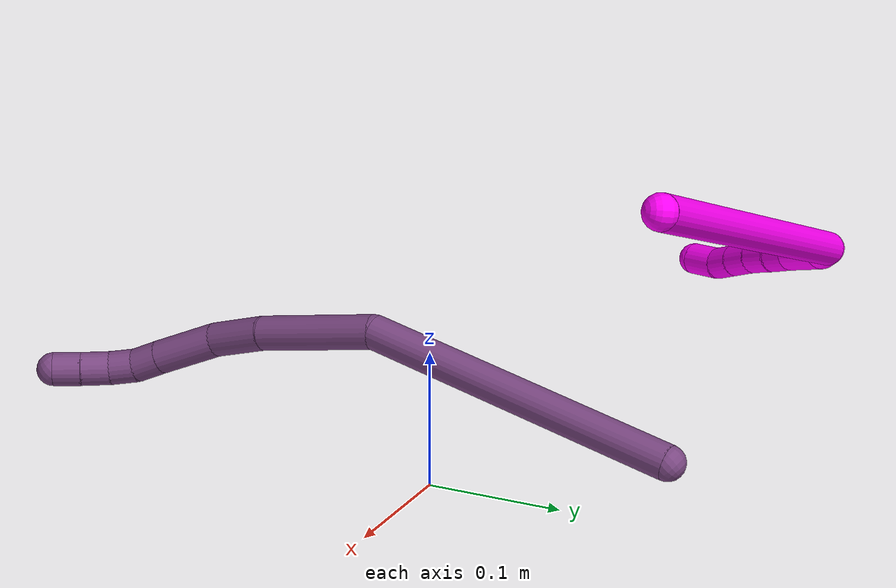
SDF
<sdf version="1.7">
 <world name="default">
  <model name="10">
   <static>0</static>
   <link name="10">
    <collision name="collision-cylinder-e_1_1_4">
     <pose>-0.078935 -0.059363 -0.112699 2.65679 -0.554774 -1.7114</pose>
     <geometry><cylinder><radius>0.0125</radius><length>0.299705</length></cylinder></geometry>
     <surface>
      <friction><ode><mu>1.16</mu><mu2>1.16</mu2><slip1>0</slip1><slip2>0</slip2></ode></friction>
      <contact><ode><kp>1e+06</kp><kd>1</kd><max_vel>0</max_vel><min_depth>0.001</min_depth></ode></contact>
     </surface>
    </collision>
    <visual name="visual-cylinder-e_1_1_4">
     <pose>-0.078935 -0.059363 -0.112699 2.65679 -0.554774 -1.7114</pose>
     <geometry><cylinder><radius>0.0125</radius><length>0.299705</length></cylinder></geometry>
     <material><ambient>1 0 0.964706 1</ambient></material>
    </visual>
    <collision name="collision-cylinder-e_2_4_5">
     <pose>-0.170356 -0.12872 -0.231835 2.14297 -0.809927 -1.33222</pose>
     <geometry><cylinder><radius>0.0125</radius><length>0.034479</length></cylinder></geometry>
     <surface>
      <friction><ode><mu>1.16</mu><mu2>1.16</mu2><slip1>0</slip1><slip2>0</slip2></ode></friction>
      <contact><ode><kp>1e+06</kp><kd>1</kd><max_vel>0</max_vel><min_depth>0.001</min_depth></ode></contact>
     </surface>
    </collision>
    <visual name="visual-cylinder-e_2_4_5">
     <pose>-0.170356 -0.12872 -0.231835 2.14297 -0.809927 -1.33222</pose>
     <geometry><cylinder><radius>0.0125</radius><length>0.034479</length></cylinder></geometry>
     <material><ambient>1 0 0.964706 1</ambient></material>
    </visual>
    <collision name="collision-cylinder-e_3_5_6">
     <pose>-0.204382 -0.15416 -0.239032 1.61996 -0.948128 -0.988649</pose>
     <geometry><cylinder><radius>0.0125</radius><length>0.053036</length></cylinder></geometry>
     <surface>
      <friction><ode><mu>1.16</mu><mu2>1.16</mu2><slip1>0</slip1><slip2>0</slip2></ode></friction>
      <contact><ode><kp>1e+06</kp><kd>1</kd><max_vel>0</max_vel><min_depth>0.001</min_depth></ode></contact>
     </surface>
    </collision>
    <visual name="visual-cylinder-e_3_5_6">
     <pose>-0.204382 -0.15416 -0.239032 1.61996 -0.948128 -0.988649</pose>
     <geometry><cylinder><radius>0.0125</radius><length>0.053036</length></cylinder></geometry>
     <material><ambient>1 0 0.964706 1</ambient></material>
    </visual>
    <collision name="collision-cylinder-e_4_6_7">
     <pose>-0.233385 -0.175735 -0.236758 1.11114 -0.829003 -0.533285</pose>
     <geometry><cylinder><radius>0.0125</radius><length>0.020244</length></cylinder></geometry>
     <surface>
      <friction><ode><mu>1.16</mu><mu2>1.16</mu2><slip1>0</slip1><slip2>0</slip2></ode></friction>
      <contact><ode><kp>1e+06</kp><kd>1</kd><max_vel>0</max_vel><min_depth>0.001</min_depth></ode></contact>
     </surface>
    </collision>
    <visual name="visual-cylinder-e_4_6_7">
     <pose>-0.233385 -0.175735 -0.236758 1.11114 -0.829003 -0.533285</pose>
     <geometry><cylinder><radius>0.0125</radius><length>0.020244</length></cylinder></geometry>
     <material><ambient>1 0 0.964706 1</ambient></material>
    </visual>
    <collision name="collision-cylinder-e_5_7_8">
     <pose>-0.250007 -0.188838 -0.231109 1.21199 -0.888078 -0.636889</pose>
     <geometry><cylinder><radius>0.0125</radius><length>0.02361</length></cylinder></geometry>
     <surface>
      <friction><ode><mu>1.16</mu><mu2>1.16</mu2><slip1>0</slip1><slip2>0</slip2></ode></friction>
      <contact><ode><kp>1e+06</kp><kd>1</kd><max_vel>0</max_vel><min_depth>0.001</min_depth></ode></contact>
     </surface>
    </collision>
    <visual name="visual-cylinder-e_5_7_8">
     <pose>-0.250007 -0.188838 -0.231109 1.21199 -0.888078 -0.636889</pose>
     <geometry><cylinder><radius>0.0125</radius><length>0.02361</length></cylinder></geometry>
     <material><ambient>1 0 0.964706 1</ambient></material>
    </visual>
    <collision name="collision-cylinder-e_6_8_9">
     <pose>-0.267171 -0.203031 -0.225632 1.19341 -0.800526 -0.559749</pose>
     <geometry><cylinder><radius>0.0125</radius><length>0.022307</length></cylinder></geometry>
     <surface>
      <friction><ode><mu>1.16</mu><mu2>1.16</mu2><slip1>0</slip1><slip2>0</slip2></ode></friction>
      <contact><ode><kp>1e+06</kp><kd>1</kd><max_vel>0</max_vel><min_depth>0.001</min_depth></ode></contact>
     </surface>
    </collision>
    <visual name="visual-cylinder-e_6_8_9">
     <pose>-0.267171 -0.203031 -0.225632 1.19341 -0.800526 -0.559749</pose>
     <geometry><cylinder><radius>0.0125</radius><length>0.022307</length></cylinder></geometry>
     <material><ambient>1 0 0.964706 1</ambient></material>
    </visual>
    <collision name="collision-cylinder-e_7_9_10">
     <pose>-0.28242 -0.216831 -0.220156 1.19267 -0.796845 -0.556606</pose>
     <geometry><cylinder><radius>0.0125</radius><length>0.020258</length></cylinder></geometry>
     <surface>
      <friction><ode><mu>1.16</mu><mu2>1.16</mu2><slip1>0</slip1><slip2>0</slip2></ode></friction>
      <contact><ode><kp>1e+06</kp><kd>1</kd><max_vel>0</max_vel><min_depth>0.001</min_depth></ode></contact>
     </surface>
    </collision>
    <visual name="visual-cylinder-e_7_9_10">
     <pose>-0.28242 -0.216831 -0.220156 1.19267 -0.796845 -0.556606</pose>
     <geometry><cylinder><radius>0.0125</radius><length>0.020258</length></cylinder></geometry>
     <material><ambient>1 0 0.964706 1</ambient></material>
    </visual>
    <collision name="collision-cylinder-e_8_10_2">
     <pose>-0.30066 -0.228794 -0.21266 0.834146 -0.986804 -0.467809</pose>
     <geometry><cylinder><radius>0.0125</radius><length>0.026361</length></cylinder></geometry>
     <surface>
      <friction><ode><mu>1.16</mu><mu2>1.16</mu2><slip1>0</slip1><slip2>0</slip2></ode></friction>
      <contact><ode><kp>1e+06</kp><kd>1</kd><max_vel>0</max_vel><min_depth>0.001</min_depth></ode></contact>
     </surface>
    </collision>
    <visual name="visual-cylinder-e_8_10_2">
     <pose>-0.30066 -0.228794 -0.21266 0.834146 -0.986804 -0.467809</pose>
     <geometry><cylinder><radius>0.0125</radius><length>0.026361</length></cylinder></geometry>
     <material><ambient>1 0 0.964706 1</ambient></material>
    </visual>
    <collision name="collision-sphere-2">
     <pose>-0.311656 -0.234177 -0.207778 0 -0 0</pose>
     <geometry><sphere><radius>0.0125</radius></sphere></geometry>
     <surface>
      <friction><ode><mu>1.16</mu><mu2>1.16</mu2><slip1>0</slip1><slip2>0</slip2></ode></friction>
      <contact><ode><kp>1e+06</kp><kd>1</kd><max_vel>0</max_vel><min_depth>0.001</min_depth></ode></contact>
     </surface>
    </collision>
    <visual name="visual-sphere-2">
     <pose>-0.311656 -0.234177 -0.207778 0 -0 0</pose>
     <geometry><sphere><radius>0.0125</radius></sphere></geometry>
     <material><ambient>1 0 0.964706 1</ambient></material>
    </visual>
    <collision name="collision-sphere-10">
     <pose>-0.289664 -0.223411 -0.217542 0 -0 0</pose>
     <geometry><sphere><radius>0.0125</radius></sphere></geometry>
     <surface>
      <friction><ode><mu>1.16</mu><mu2>1.16</mu2><slip1>0</slip1><slip2>0</slip2></ode></friction>
      <contact><ode><kp>1e+06</kp><kd>1</kd><max_vel>0</max_vel><min_depth>0.001</min_depth></ode></contact>
     </surface>
    </collision>
    <visual name="visual-sphere-10">
     <pose>-0.289664 -0.223411 -0.217542 0 -0 0</pose>
     <geometry><sphere><radius>0.0125</radius></sphere></geometry>
     <material><ambient>1 0 0.964706 1</ambient></material>
    </visual>
    <collision name="collision-sphere-9">
     <pose>-0.275176 -0.210251 -0.22277 0 -0 0</pose>
     <geometry><sphere><radius>0.0125</radius></sphere></geometry>
     <surface>
      <friction><ode><mu>1.16</mu><mu2>1.16</mu2><slip1>0</slip1><slip2>0</slip2></ode></friction>
      <contact><ode><kp>1e+06</kp><kd>1</kd><max_vel>0</max_vel><min_depth>0.001</min_depth></ode></contact>
     </surface>
    </collision>
    <visual name="visual-sphere-9">
     <pose>-0.275176 -0.210251 -0.22277 0 -0 0</pose>
     <geometry><sphere><radius>0.0125</radius></sphere></geometry>
     <material><ambient>1 0 0.964706 1</ambient></material>
    </visual>
    <collision name="collision-sphere-4">
     <pose>-0.15787 -0.118726 -0.225399 0 -0 0</pose>
     <geometry><sphere><radius>0.0125</radius></sphere></geometry>
     <surface>
      <friction><ode><mu>1.16</mu><mu2>1.16</mu2><slip1>0</slip1><slip2>0</slip2></ode></friction>
      <contact><ode><kp>1e+06</kp><kd>1</kd><max_vel>0</max_vel><min_depth>0.001</min_depth></ode></contact>
     </surface>
    </collision>
    <visual name="visual-sphere-4">
     <pose>-0.15787 -0.118726 -0.225399 0 -0 0</pose>
     <geometry><sphere><radius>0.0125</radius></sphere></geometry>
     <material><ambient>1 0 0.964706 1</ambient></material>
    </visual>
    <collision name="collision-sphere-1">
     <geometry><sphere><radius>0.0125</radius></sphere></geometry>
     <surface>
      <friction><ode><mu>1.16</mu><mu2>1.16</mu2><slip1>0</slip1><slip2>0</slip2></ode></friction>
      <contact><ode><kp>1e+06</kp><kd>1</kd><max_vel>0</max_vel><min_depth>0.001</min_depth></ode></contact>
     </surface>
    </collision>
    <visual name="visual-sphere-1">
     <geometry><sphere><radius>0.0125</radius></sphere></geometry>
     <material><ambient>1 0 0.964706 1</ambient></material>
    </visual>
    <collision name="collision-sphere-8">
     <pose>-0.259166 -0.195811 -0.228494 0 -0 0</pose>
     <geometry><sphere><radius>0.0125</radius></sphere></geometry>
     <surface>
      <friction><ode><mu>1.16</mu><mu2>1.16</mu2><slip1>0</slip1><slip2>0</slip2></ode></friction>
      <contact><ode><kp>1e+06</kp><kd>1</kd><max_vel>0</max_vel><min_depth>0.001</min_depth></ode></contact>
     </surface>
    </collision>
    <visual name="visual-sphere-8">
     <pose>-0.259166 -0.195811 -0.228494 0 -0 0</pose>
     <geometry><sphere><radius>0.0125</radius></sphere></geometry>
     <material><ambient>1 0 0.964706 1</ambient></material>
    </visual>
    <collision name="collision-sphere-5">
     <pose>-0.182841 -0.138714 -0.238272 0 -0 0</pose>
     <geometry><sphere><radius>0.0125</radius></sphere></geometry>
     <surface>
      <friction><ode><mu>1.16</mu><mu2>1.16</mu2><slip1>0</slip1><slip2>0</slip2></ode></friction>
      <contact><ode><kp>1e+06</kp><kd>1</kd><max_vel>0</max_vel><min_depth>0.001</min_depth></ode></contact>
     </surface>
    </collision>
    <visual name="visual-sphere-5">
     <pose>-0.182841 -0.138714 -0.238272 0 -0 0</pose>
     <geometry><sphere><radius>0.0125</radius></sphere></geometry>
     <material><ambient>1 0 0.964706 1</ambient></material>
    </visual>
    <collision name="collision-sphere-6">
     <pose>-0.225923 -0.169607 -0.239792 0 -0 0</pose>
     <geometry><sphere><radius>0.0125</radius></sphere></geometry>
     <surface>
      <friction><ode><mu>1.16</mu><mu2>1.16</mu2><slip1>0</slip1><slip2>0</slip2></ode></friction>
      <contact><ode><kp>1e+06</kp><kd>1</kd><max_vel>0</max_vel><min_depth>0.001</min_depth></ode></contact>
     </surface>
    </collision>
    <visual name="visual-sphere-6">
     <pose>-0.225923 -0.169607 -0.239792 0 -0 0</pose>
     <geometry><sphere><radius>0.0125</radius></sphere></geometry>
     <material><ambient>1 0 0.964706 1</ambient></material>
    </visual>
    <collision name="collision-sphere-7">
     <pose>-0.240848 -0.181864 -0.233724 0 -0 0</pose>
     <geometry><sphere><radius>0.0125</radius></sphere></geometry>
     <surface>
      <friction><ode><mu>1.16</mu><mu2>1.16</mu2><slip1>0</slip1><slip2>0</slip2></ode></friction>
      <contact><ode><kp>1e+06</kp><kd>1</kd><max_vel>0</max_vel><min_depth>0.001</min_depth></ode></contact>
     </surface>
    </collision>
    <visual name="visual-sphere-7">
     <pose>-0.240848 -0.181864 -0.233724 0 -0 0</pose>
     <geometry><sphere><radius>0.0125</radius></sphere></geometry>
     <material><ambient>1 0 0.964706 1</ambient></material>
    </visual>
    <inertial>
     <pose>-0.141209 -0.106749 -0.159591 0 -0 0</pose>
     <mass>0.5</mass>
     <inertia>
      <ixx>-0.002194</ixx>
      <ixy>0</ixy>
      <ixz>0</ixz>
      <iyy>-0.001083</iyy>
      <iyz>0</iyz>
      <izz>0.002104</izz>
     </inertia>
    </inertial>
   </link>
   <pose>0.046559 0.184387 0.237258 1.41505 0.307978 0.702313</pose>
  </model>
  <model name="20">
   <static>0</static>
   <link name="20">
    <collision name="collision-cylinder-e_1_1_4">
     <pose>0.031684 -0.056797 0.097159 0.529005 0.274425 0.074763</pose>
     <geometry><cylinder><radius>0.0125</radius><length>0.233834</length></cylinder></geometry>
     <surface>
      <friction><ode><mu>1.16</mu><mu2>1.16</mu2><slip1>0</slip1><slip2>0</slip2></ode></friction>
      <contact><ode><kp>1e+06</kp><kd>1</kd><max_vel>0</max_vel><min_depth>0.001</min_depth></ode></contact>
     </surface>
    </collision>
    <visual name="visual-cylinder-e_1_1_4">
     <pose>0.031684 -0.056797 0.097159 0.529005 0.274425 0.074763</pose>
     <geometry><cylinder><radius>0.0125</radius><length>0.233834</length></cylinder></geometry>
     <material><ambient>0.478431 0.278431 0.509804 1</ambient></material>
    </visual>
    <collision name="collision-cylinder-e_2_4_5">
     <pose>0.087964 -0.141347 0.221114 0.802922 0.56758 0.246377</pose>
     <geometry><cylinder><radius>0.0125</radius><length>0.091504</length></cylinder></geometry>
     <surface>
      <friction><ode><mu>1.16</mu><mu2>1.16</mu2><slip1>0</slip1><slip2>0</slip2></ode></friction>
      <contact><ode><kp>1e+06</kp><kd>1</kd><max_vel>0</max_vel><min_depth>0.001</min_depth></ode></contact>
     </surface>
    </collision>
    <visual name="visual-cylinder-e_2_4_5">
     <pose>0.087964 -0.141347 0.221114 0.802922 0.56758 0.246377</pose>
     <geometry><cylinder><radius>0.0125</radius><length>0.091504</length></cylinder></geometry>
     <material><ambient>0.478431 0.278431 0.509804 1</ambient></material>
    </visual>
    <collision name="collision-cylinder-e_3_5_6">
     <pose>0.124484 -0.183983 0.258339 0.959639 0.580724 0.308517</pose>
     <geometry><cylinder><radius>0.0125</radius><length>0.043471</length></cylinder></geometry>
     <surface>
      <friction><ode><mu>1.16</mu><mu2>1.16</mu2><slip1>0</slip1><slip2>0</slip2></ode></friction>
      <contact><ode><kp>1e+06</kp><kd>1</kd><max_vel>0</max_vel><min_depth>0.001</min_depth></ode></contact>
     </surface>
    </collision>
    <visual name="visual-cylinder-e_3_5_6">
     <pose>0.124484 -0.183983 0.258339 0.959639 0.580724 0.308517</pose>
     <geometry><cylinder><radius>0.0125</radius><length>0.043471</length></cylinder></geometry>
     <material><ambient>0.478431 0.278431 0.509804 1</ambient></material>
    </visual>
    <collision name="collision-cylinder-e_4_6_7">
     <pose>0.15408 -0.211837 0.278238 0.940073 0.833079 0.44217</pose>
     <geometry><cylinder><radius>0.0125</radius><length>0.047758</length></cylinder></geometry>
     <surface>
      <friction><ode><mu>1.16</mu><mu2>1.16</mu2><slip1>0</slip1><slip2>0</slip2></ode></friction>
      <contact><ode><kp>1e+06</kp><kd>1</kd><max_vel>0</max_vel><min_depth>0.001</min_depth></ode></contact>
     </surface>
    </collision>
    <visual name="visual-cylinder-e_4_6_7">
     <pose>0.15408 -0.211837 0.278238 0.940073 0.833079 0.44217</pose>
     <geometry><cylinder><radius>0.0125</radius><length>0.047758</length></cylinder></geometry>
     <material><ambient>0.478431 0.278431 0.509804 1</ambient></material>
    </visual>
    <collision name="collision-cylinder-e_5_7_8">
     <pose>0.179721 -0.230521 0.291639 0.968354 0.854861 0.470276</pose>
     <geometry><cylinder><radius>0.0125</radius><length>0.021128</length></cylinder></geometry>
     <surface>
      <friction><ode><mu>1.16</mu><mu2>1.16</mu2><slip1>0</slip1><slip2>0</slip2></ode></friction>
      <contact><ode><kp>1e+06</kp><kd>1</kd><max_vel>0</max_vel><min_depth>0.001</min_depth></ode></contact>
     </surface>
    </collision>
    <visual name="visual-cylinder-e_5_7_8">
     <pose>0.179721 -0.230521 0.291639 0.968354 0.854861 0.470276</pose>
     <geometry><cylinder><radius>0.0125</radius><length>0.021128</length></cylinder></geometry>
     <material><ambient>0.478431 0.278431 0.509804 1</ambient></material>
    </visual>
    <collision name="collision-cylinder-e_6_8_9">
     <pose>0.195129 -0.239652 0.301337 0.534862 0.837143 0.242582</pose>
     <geometry><cylinder><radius>0.0125</radius><length>0.020031</length></cylinder></geometry>
     <surface>
      <friction><ode><mu>1.16</mu><mu2>1.16</mu2><slip1>0</slip1><slip2>0</slip2></ode></friction>
      <contact><ode><kp>1e+06</kp><kd>1</kd><max_vel>0</max_vel><min_depth>0.001</min_depth></ode></contact>
     </surface>
    </collision>
    <visual name="visual-cylinder-e_6_8_9">
     <pose>0.195129 -0.239652 0.301337 0.534862 0.837143 0.242582</pose>
     <geometry><cylinder><radius>0.0125</radius><length>0.020031</length></cylinder></geometry>
     <material><ambient>0.478431 0.278431 0.509804 1</ambient></material>
    </visual>
    <collision name="collision-cylinder-e_7_9_10">
     <pose>0.210962 -0.244002 0.314082 0.132885 0.873047 0.062068</pose>
     <geometry><cylinder><radius>0.0125</radius><length>0.021908</length></cylinder></geometry>
     <surface>
      <friction><ode><mu>1.16</mu><mu2>1.16</mu2><slip1>0</slip1><slip2>0</slip2></ode></friction>
      <contact><ode><kp>1e+06</kp><kd>1</kd><max_vel>0</max_vel><min_depth>0.001</min_depth></ode></contact>
     </surface>
    </collision>
    <visual name="visual-cylinder-e_7_9_10">
     <pose>0.210962 -0.244002 0.314082 0.132885 0.873047 0.062068</pose>
     <geometry><cylinder><radius>0.0125</radius><length>0.021908</length></cylinder></geometry>
     <material><ambient>0.478431 0.278431 0.509804 1</ambient></material>
    </visual>
    <collision name="collision-cylinder-e_8_10_2">
     <pose>0.226888 -0.246198 0.327793 0.185459 0.832647 0.082194</pose>
     <geometry><cylinder><radius>0.0125</radius><length>0.020366</length></cylinder></geometry>
     <surface>
      <friction><ode><mu>1.16</mu><mu2>1.16</mu2><slip1>0</slip1><slip2>0</slip2></ode></friction>
      <contact><ode><kp>1e+06</kp><kd>1</kd><max_vel>0</max_vel><min_depth>0.001</min_depth></ode></contact>
     </surface>
    </collision>
    <visual name="visual-cylinder-e_8_10_2">
     <pose>0.226888 -0.246198 0.327793 0.185459 0.832647 0.082194</pose>
     <geometry><cylinder><radius>0.0125</radius><length>0.020366</length></cylinder></geometry>
     <material><ambient>0.478431 0.278431 0.509804 1</ambient></material>
    </visual>
    <collision name="collision-sphere-2">
     <pose>0.234421 -0.247462 0.334528 0 -0 0</pose>
     <geometry><sphere><radius>0.0125</radius></sphere></geometry>
     <surface>
      <friction><ode><mu>1.16</mu><mu2>1.16</mu2><slip1>0</slip1><slip2>0</slip2></ode></friction>
      <contact><ode><kp>1e+06</kp><kd>1</kd><max_vel>0</max_vel><min_depth>0.001</min_depth></ode></contact>
     </surface>
    </collision>
    <visual name="visual-sphere-2">
     <pose>0.234421 -0.247462 0.334528 0 -0 0</pose>
     <geometry><sphere><radius>0.0125</radius></sphere></geometry>
     <material><ambient>0.478431 0.278431 0.509804 1</ambient></material>
    </visual>
    <collision name="collision-sphere-10">
     <pose>0.219356 -0.244935 0.321058 0 -0 0</pose>
     <geometry><sphere><radius>0.0125</radius></sphere></geometry>
     <surface>
      <friction><ode><mu>1.16</mu><mu2>1.16</mu2><slip1>0</slip1><slip2>0</slip2></ode></friction>
      <contact><ode><kp>1e+06</kp><kd>1</kd><max_vel>0</max_vel><min_depth>0.001</min_depth></ode></contact>
     </surface>
    </collision>
    <visual name="visual-sphere-10">
     <pose>0.219356 -0.244935 0.321058 0 -0 0</pose>
     <geometry><sphere><radius>0.0125</radius></sphere></geometry>
     <material><ambient>0.478431 0.278431 0.509804 1</ambient></material>
    </visual>
    <collision name="collision-sphere-9">
     <pose>0.202568 -0.24307 0.307106 0 -0 0</pose>
     <geometry><sphere><radius>0.0125</radius></sphere></geometry>
     <surface>
      <friction><ode><mu>1.16</mu><mu2>1.16</mu2><slip1>0</slip1><slip2>0</slip2></ode></friction>
      <contact><ode><kp>1e+06</kp><kd>1</kd><max_vel>0</max_vel><min_depth>0.001</min_depth></ode></contact>
     </surface>
    </collision>
    <visual name="visual-sphere-9">
     <pose>0.202568 -0.24307 0.307106 0 -0 0</pose>
     <geometry><sphere><radius>0.0125</radius></sphere></geometry>
     <material><ambient>0.478431 0.278431 0.509804 1</ambient></material>
    </visual>
    <collision name="collision-sphere-4">
     <pose>0.063367 -0.113594 0.194317 0 -0 0</pose>
     <geometry><sphere><radius>0.0125</radius></sphere></geometry>
     <surface>
      <friction><ode><mu>1.16</mu><mu2>1.16</mu2><slip1>0</slip1><slip2>0</slip2></ode></friction>
      <contact><ode><kp>1e+06</kp><kd>1</kd><max_vel>0</max_vel><min_depth>0.001</min_depth></ode></contact>
     </surface>
    </collision>
    <visual name="visual-sphere-4">
     <pose>0.063367 -0.113594 0.194317 0 -0 0</pose>
     <geometry><sphere><radius>0.0125</radius></sphere></geometry>
     <material><ambient>0.478431 0.278431 0.509804 1</ambient></material>
    </visual>
    <collision name="collision-sphere-1">
     <geometry><sphere><radius>0.0125</radius></sphere></geometry>
     <surface>
      <friction><ode><mu>1.16</mu><mu2>1.16</mu2><slip1>0</slip1><slip2>0</slip2></ode></friction>
      <contact><ode><kp>1e+06</kp><kd>1</kd><max_vel>0</max_vel><min_depth>0.001</min_depth></ode></contact>
     </surface>
    </collision>
    <visual name="visual-sphere-1">
     <geometry><sphere><radius>0.0125</radius></sphere></geometry>
     <material><ambient>0.478431 0.278431 0.509804 1</ambient></material>
    </visual>
    <collision name="collision-sphere-8">
     <pose>0.187691 -0.236233 0.295567 0 -0 0</pose>
     <geometry><sphere><radius>0.0125</radius></sphere></geometry>
     <surface>
      <friction><ode><mu>1.16</mu><mu2>1.16</mu2><slip1>0</slip1><slip2>0</slip2></ode></friction>
      <contact><ode><kp>1e+06</kp><kd>1</kd><max_vel>0</max_vel><min_depth>0.001</min_depth></ode></contact>
     </surface>
    </collision>
    <visual name="visual-sphere-8">
     <pose>0.187691 -0.236233 0.295567 0 -0 0</pose>
     <geometry><sphere><radius>0.0125</radius></sphere></geometry>
     <material><ambient>0.478431 0.278431 0.509804 1</ambient></material>
    </visual>
    <collision name="collision-sphere-5">
     <pose>0.11256 -0.1691 0.247911 0 -0 0</pose>
     <geometry><sphere><radius>0.0125</radius></sphere></geometry>
     <surface>
      <friction><ode><mu>1.16</mu><mu2>1.16</mu2><slip1>0</slip1><slip2>0</slip2></ode></friction>
      <contact><ode><kp>1e+06</kp><kd>1</kd><max_vel>0</max_vel><min_depth>0.001</min_depth></ode></contact>
     </surface>
    </collision>
    <visual name="visual-sphere-5">
     <pose>0.11256 -0.1691 0.247911 0 -0 0</pose>
     <geometry><sphere><radius>0.0125</radius></sphere></geometry>
     <material><ambient>0.478431 0.278431 0.509804 1</ambient></material>
    </visual>
    <collision name="collision-sphere-6">
     <pose>0.136409 -0.198866 0.268767 0 -0 0</pose>
     <geometry><sphere><radius>0.0125</radius></sphere></geometry>
     <surface>
      <friction><ode><mu>1.16</mu><mu2>1.16</mu2><slip1>0</slip1><slip2>0</slip2></ode></friction>
      <contact><ode><kp>1e+06</kp><kd>1</kd><max_vel>0</max_vel><min_depth>0.001</min_depth></ode></contact>
     </surface>
    </collision>
    <visual name="visual-sphere-6">
     <pose>0.136409 -0.198866 0.268767 0 -0 0</pose>
     <geometry><sphere><radius>0.0125</radius></sphere></geometry>
     <material><ambient>0.478431 0.278431 0.509804 1</ambient></material>
    </visual>
    <collision name="collision-sphere-7">
     <pose>0.17175 -0.224808 0.28771 0 -0 0</pose>
     <geometry><sphere><radius>0.0125</radius></sphere></geometry>
     <surface>
      <friction><ode><mu>1.16</mu><mu2>1.16</mu2><slip1>0</slip1><slip2>0</slip2></ode></friction>
      <contact><ode><kp>1e+06</kp><kd>1</kd><max_vel>0</max_vel><min_depth>0.001</min_depth></ode></contact>
     </surface>
    </collision>
    <visual name="visual-sphere-7">
     <pose>0.17175 -0.224808 0.28771 0 -0 0</pose>
     <geometry><sphere><radius>0.0125</radius></sphere></geometry>
     <material><ambient>0.478431 0.278431 0.509804 1</ambient></material>
    </visual>
    <inertial>
     <pose>0.090352 -0.128721 0.186449 0 -0 0</pose>
     <mass>0.5</mass>
     <inertia>
      <ixx>0.00122</ixx>
      <ixy>0</ixy>
      <ixz>0</ixz>
      <iyy>0.001086</iyy>
      <iyz>0</iyz>
      <izz>0.000258</izz>
     </inertia>
    </inertial>
   </link>
   <pose>0.030095 0.188741 0.063194 0.5945 0.55737 -0.57244</pose>
  </model>
 </world>
</sdf>
